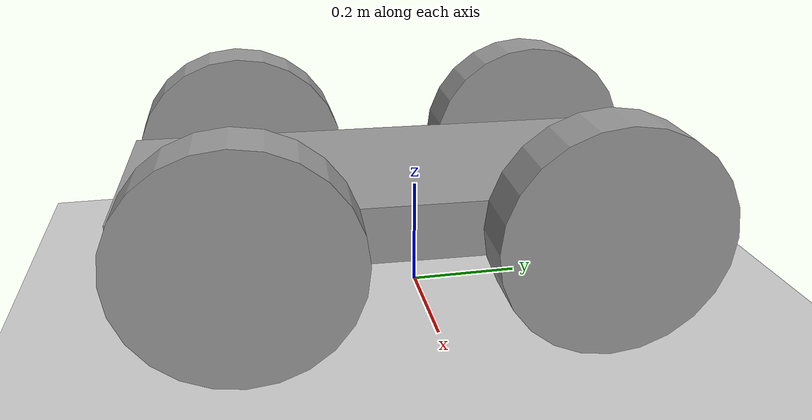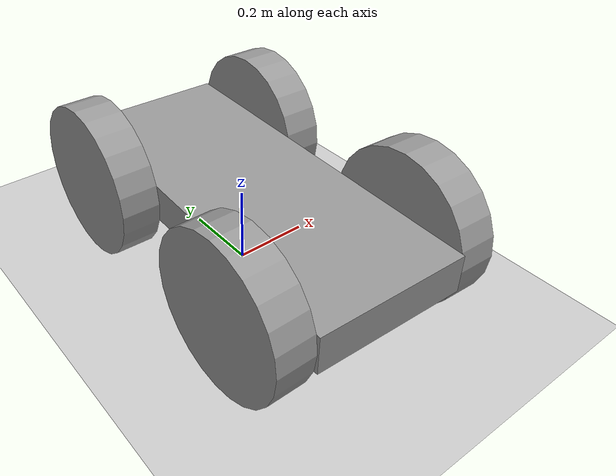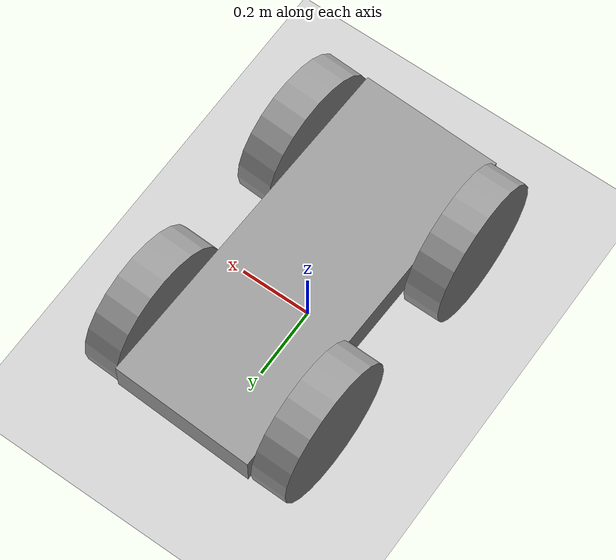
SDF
<sdf version="1.6">
 <world name="default">
  <model name="ground_plane">
   <static>1</static>
   <link name="link">
    <collision name="collision">
     <geometry><plane><normal>0 0 1</normal><size>100 100</size></plane></geometry>
     <surface><friction><ode><mu>100</mu><mu2>50</mu2></ode></friction></surface>
    </collision>
    <visual name="visual">
     <cast_shadows>0</cast_shadows>
     <geometry><plane><normal>0 0 1</normal><size>100 100</size></plane></geometry>
     <material>
      <script><uri>file://media/materials/scripts/gazebo.material</uri><name>Gazebo/Grey</name></script>
     </material>
    </visual>
   </link>
  </model>
  <model name="4Wheel_Robot">
   <link name="link_2">
    <pose>0.001842 -0.000209 0 0 -0 0</pose>
    <inertial>
     <mass>1</mass>
     <inertia>
      <ixx>0.166667</ixx>
      <ixy>0</ixy>
      <ixz>0</ixz>
      <iyy>0.166667</iyy>
      <iyz>0</iyz>
      <izz>0.166667</izz>
     </inertia>
    </inertial>
    <visual name="visual">
     <geometry><box><size>0.4 1 0.1</size></box></geometry>
     <material>
      <lighting>1</lighting>
      <script><uri>file://media/materials/scripts/gazebo.material</uri><name>Gazebo/Grey</name></script>
      <shader type="pixel"><normal_map>__default__</normal_map></shader>
      <ambient>0.3 0.3 0.3 1</ambient>
      <diffuse>0.7 0.7 0.7 1</diffuse>
      <specular>0.01 0.01 0.01 1</specular>
      <emissive>0 0 0 1</emissive>
     </material>
    </visual>
    <collision name="collision">
     <geometry><box><size>0.4 1 0.1</size></box></geometry>
     <surface>
      <friction>
       <ode><mu>1</mu><mu2>1</mu2><fdir1>0 0 0</fdir1><slip1>0</slip1><slip2>0</slip2></ode>
       <torsional>
        <coefficient>1</coefficient>
        <patch_radius>0</patch_radius>
        <surface_radius>0</surface_radius>
        <use_patch_radius>1</use_patch_radius>
        <ode><slip>0</slip></ode>
       </torsional>
      </friction>
      <bounce><restitution_coefficient>0</restitution_coefficient><threshold>1e+06</threshold></bounce>
      <contact>
       <collide_without_contact>0</collide_without_contact>
       <collide_without_contact_bitmask>1</collide_without_contact_bitmask>
       <collide_bitmask>1</collide_bitmask>
       <ode>
        <soft_cfm>0</soft_cfm>
        <soft_erp>0.2</soft_erp>
        <kp>1e+13</kp>
        <kd>1</kd>
        <max_vel>0.01</max_vel>
        <min_depth>0</min_depth>
       </ode>
       <bullet>
        <split_impulse>1</split_impulse>
        <split_impulse_penetration_threshold>-0.01</split_impulse_penetration_threshold>
        <soft_cfm>0</soft_cfm>
        <soft_erp>0.2</soft_erp>
        <kp>1e+13</kp>
        <kd>1</kd>
       </bullet>
      </contact>
     </surface>
    </collision>
   </link>
   <link name="link_3">
    <pose>-0.252675 0.298691 0 1.57079 -9.6e-05 -1.54815</pose>
    <inertial>
     <mass>1</mass>
     <inertia><ixx>0.145833</ixx><ixy>0</ixy><ixz>0</ixz><iyy>0.145833</iyy><iyz>0</iyz><izz>0.125</izz></inertia>
    </inertial>
    <visual name="visual">
     <geometry><cylinder><radius>0.2</radius><length>0.1</length></cylinder></geometry>
     <material>
      <lighting>1</lighting>
      <script><uri>file://media/materials/scripts/gazebo.material</uri><name>Gazebo/Grey</name></script>
      <shader type="pixel"><normal_map>__default__</normal_map></shader>
      <ambient>0.3 0.3 0.3 1</ambient>
      <diffuse>0.7 0.7 0.7 1</diffuse>
      <specular>0.01 0.01 0.01 1</specular>
      <emissive>0 0 0 1</emissive>
     </material>
    </visual>
    <collision name="collision">
     <geometry><cylinder><radius>0.2</radius><length>0.1</length></cylinder></geometry>
     <surface>
      <friction>
       <ode><mu>1</mu><mu2>1</mu2><fdir1>0 0 0</fdir1><slip1>0</slip1><slip2>0</slip2></ode>
       <torsional>
        <coefficient>1</coefficient>
        <patch_radius>0</patch_radius>
        <surface_radius>0</surface_radius>
        <use_patch_radius>1</use_patch_radius>
        <ode><slip>0</slip></ode>
       </torsional>
      </friction>
      <bounce><restitution_coefficient>0</restitution_coefficient><threshold>1e+06</threshold></bounce>
      <contact>
       <collide_without_contact>0</collide_without_contact>
       <collide_without_contact_bitmask>1</collide_without_contact_bitmask>
       <collide_bitmask>1</collide_bitmask>
       <ode>
        <soft_cfm>0</soft_cfm>
        <soft_erp>0.2</soft_erp>
        <kp>1e+13</kp>
        <kd>1</kd>
        <max_vel>0.01</max_vel>
        <min_depth>0</min_depth>
       </ode>
       <bullet>
        <split_impulse>1</split_impulse>
        <split_impulse_penetration_threshold>-0.01</split_impulse_penetration_threshold>
        <soft_cfm>0</soft_cfm>
        <soft_erp>0.2</soft_erp>
        <kp>1e+13</kp>
        <kd>1</kd>
       </bullet>
      </contact>
     </surface>
    </collision>
   </link>
   <link name="link_3_clone">
    <pose>-0.255703 -0.298438 0 1.5708 9.6e-05 1.60871</pose>
    <inertial>
     <mass>1</mass>
     <inertia><ixx>0.145833</ixx><ixy>0</ixy><ixz>0</ixz><iyy>0.145833</iyy><iyz>0</iyz><izz>0.125</izz></inertia>
    </inertial>
    <visual name="visual">
     <geometry><cylinder><radius>0.2</radius><length>0.1</length></cylinder></geometry>
     <material>
      <lighting>1</lighting>
      <script><uri>file://media/materials/scripts/gazebo.material</uri><name>Gazebo/Grey</name></script>
      <shader type="pixel"><normal_map>__default__</normal_map></shader>
      <ambient>0.3 0.3 0.3 1</ambient>
      <diffuse>0.7 0.7 0.7 1</diffuse>
      <specular>0.01 0.01 0.01 1</specular>
      <emissive>0 0 0 1</emissive>
     </material>
    </visual>
    <collision name="collision">
     <geometry><cylinder><radius>0.2</radius><length>0.1</length></cylinder></geometry>
     <surface>
      <friction>
       <ode><mu>1</mu><mu2>1</mu2><fdir1>0 0 0</fdir1><slip1>0</slip1><slip2>0</slip2></ode>
       <torsional>
        <coefficient>1</coefficient>
        <patch_radius>0</patch_radius>
        <surface_radius>0</surface_radius>
        <use_patch_radius>1</use_patch_radius>
        <ode><slip>0</slip></ode>
       </torsional>
      </friction>
      <bounce><restitution_coefficient>0</restitution_coefficient><threshold>1e+06</threshold></bounce>
      <contact>
       <collide_without_contact>0</collide_without_contact>
       <collide_without_contact_bitmask>1</collide_without_contact_bitmask>
       <collide_bitmask>1</collide_bitmask>
       <ode>
        <soft_cfm>0</soft_cfm>
        <soft_erp>0.2</soft_erp>
        <kp>1e+13</kp>
        <kd>1</kd>
        <max_vel>0.01</max_vel>
        <min_depth>0</min_depth>
       </ode>
       <bullet>
        <split_impulse>1</split_impulse>
        <split_impulse_penetration_threshold>-0.01</split_impulse_penetration_threshold>
        <soft_cfm>0</soft_cfm>
        <soft_erp>0.2</soft_erp>
        <kp>1e+13</kp>
        <kd>1</kd>
       </bullet>
      </contact>
     </surface>
    </collision>
   </link>
   <link name="link_3_clone_0">
    <pose>0.252501 0.299608 0 1.5708 9.6e-05 1.57409</pose>
    <inertial>
     <mass>1</mass>
     <inertia><ixx>0.145833</ixx><ixy>0</ixy><ixz>0</ixz><iyy>0.145833</iyy><iyz>0</iyz><izz>0.125</izz></inertia>
    </inertial>
    <visual name="visual">
     <geometry><cylinder><radius>0.2</radius><length>0.1</length></cylinder></geometry>
     <material>
      <lighting>1</lighting>
      <script><uri>file://media/materials/scripts/gazebo.material</uri><name>Gazebo/Grey</name></script>
      <shader type="pixel"><normal_map>__default__</normal_map></shader>
      <ambient>0.3 0.3 0.3 1</ambient>
      <diffuse>0.7 0.7 0.7 1</diffuse>
      <specular>0.01 0.01 0.01 1</specular>
      <emissive>0 0 0 1</emissive>
     </material>
    </visual>
    <collision name="collision">
     <geometry><cylinder><radius>0.2</radius><length>0.1</length></cylinder></geometry>
     <surface>
      <friction>
       <ode><mu>1</mu><mu2>1</mu2><fdir1>0 0 0</fdir1><slip1>0</slip1><slip2>0</slip2></ode>
       <torsional>
        <coefficient>1</coefficient>
        <patch_radius>0</patch_radius>
        <surface_radius>0</surface_radius>
        <use_patch_radius>1</use_patch_radius>
        <ode><slip>0</slip></ode>
       </torsional>
      </friction>
      <bounce><restitution_coefficient>0</restitution_coefficient><threshold>1e+06</threshold></bounce>
      <contact>
       <collide_without_contact>0</collide_without_contact>
       <collide_without_contact_bitmask>1</collide_without_contact_bitmask>
       <collide_bitmask>1</collide_bitmask>
       <ode>
        <soft_cfm>0</soft_cfm>
        <soft_erp>0.2</soft_erp>
        <kp>1e+13</kp>
        <kd>1</kd>
        <max_vel>0.01</max_vel>
        <min_depth>0</min_depth>
       </ode>
       <bullet>
        <split_impulse>1</split_impulse>
        <split_impulse_penetration_threshold>-0.01</split_impulse_penetration_threshold>
        <soft_cfm>0</soft_cfm>
        <soft_erp>0.2</soft_erp>
        <kp>1e+13</kp>
        <kd>1</kd>
       </bullet>
      </contact>
     </surface>
    </collision>
   </link>
   <link name="link_3_clone_1">
    <pose>0.254035 -0.299653 0 1.57079 9.6e-05 1.55982</pose>
    <inertial>
     <mass>1</mass>
     <inertia><ixx>0.145833</ixx><ixy>0</ixy><ixz>0</ixz><iyy>0.145833</iyy><iyz>0</iyz><izz>0.125</izz></inertia>
    </inertial>
    <visual name="visual">
     <geometry><cylinder><radius>0.2</radius><length>0.1</length></cylinder></geometry>
     <material>
      <lighting>1</lighting>
      <script><uri>file://media/materials/scripts/gazebo.material</uri><name>Gazebo/Grey</name></script>
      <shader type="pixel"><normal_map>__default__</normal_map></shader>
      <ambient>0.3 0.3 0.3 1</ambient>
      <diffuse>0.7 0.7 0.7 1</diffuse>
      <specular>0.01 0.01 0.01 1</specular>
      <emissive>0 0 0 1</emissive>
     </material>
    </visual>
    <collision name="collision">
     <geometry><cylinder><radius>0.2</radius><length>0.1</length></cylinder></geometry>
     <surface>
      <friction>
       <ode><mu>1</mu><mu2>1</mu2><fdir1>0 0 0</fdir1><slip1>0</slip1><slip2>0</slip2></ode>
       <torsional>
        <coefficient>1</coefficient>
        <patch_radius>0</patch_radius>
        <surface_radius>0</surface_radius>
        <use_patch_radius>1</use_patch_radius>
        <ode><slip>0</slip></ode>
       </torsional>
      </friction>
      <bounce><restitution_coefficient>0</restitution_coefficient><threshold>1e+06</threshold></bounce>
      <contact>
       <collide_without_contact>0</collide_without_contact>
       <collide_without_contact_bitmask>1</collide_without_contact_bitmask>
       <collide_bitmask>1</collide_bitmask>
       <ode>
        <soft_cfm>0</soft_cfm>
        <soft_erp>0.2</soft_erp>
        <kp>1e+13</kp>
        <kd>1</kd>
        <max_vel>0.01</max_vel>
        <min_depth>0</min_depth>
       </ode>
       <bullet>
        <split_impulse>1</split_impulse>
        <split_impulse_penetration_threshold>-0.01</split_impulse_penetration_threshold>
        <soft_cfm>0</soft_cfm>
        <soft_erp>0.2</soft_erp>
        <kp>1e+13</kp>
        <kd>1</kd>
       </bullet>
      </contact>
     </surface>
    </collision>
   </link>
   <joint name="link_2_JOINT_10" type="revolute">
    <parent>link_2</parent>
    <child>link_3_clone_1</child>
    <axis>
     <xyz>0 0 1</xyz>
     <use_parent_model_frame>0</use_parent_model_frame>
     <limit>
      <lower>-1.79769e+308</lower>
      <upper>1.79769e+308</upper>
      <effort>-1</effort>
      <velocity>-1</velocity>
     </limit>
     <dynamics>
      <spring_reference>0</spring_reference>
      <spring_stiffness>0</spring_stiffness>
      <damping>0</damping>
     </dynamics>
    </axis>
    <physics>
     <ode><limit><cfm>0</cfm><erp>0.2</erp></limit><suspension><cfm>0</cfm><erp>0.2</erp></suspension></ode>
    </physics>
   </joint>
   <joint name="link_2_JOINT_5" type="revolute">
    <parent>link_2</parent>
    <child>link_3</child>
    <axis>
     <xyz>0 0 1</xyz>
     <use_parent_model_frame>0</use_parent_model_frame>
     <limit>
      <lower>-1.79769e+308</lower>
      <upper>1.79769e+308</upper>
      <effort>-1</effort>
      <velocity>-1</velocity>
     </limit>
     <dynamics>
      <spring_reference>0</spring_reference>
      <spring_stiffness>0</spring_stiffness>
      <damping>0</damping>
     </dynamics>
    </axis>
    <physics>
     <ode><limit><cfm>0</cfm><erp>0.2</erp></limit><suspension><cfm>0</cfm><erp>0.2</erp></suspension></ode>
    </physics>
   </joint>
   <joint name="link_2_JOINT_7" type="revolute">
    <parent>link_2</parent>
    <child>link_3_clone</child>
    <axis>
     <xyz>0 0 1</xyz>
     <use_parent_model_frame>0</use_parent_model_frame>
     <limit>
      <lower>-1.79769e+308</lower>
      <upper>1.79769e+308</upper>
      <effort>-1</effort>
      <velocity>-1</velocity>
     </limit>
     <dynamics>
      <spring_reference>0</spring_reference>
      <spring_stiffness>0</spring_stiffness>
      <damping>0</damping>
     </dynamics>
    </axis>
    <physics>
     <ode><limit><cfm>0</cfm><erp>0.2</erp></limit><suspension><cfm>0</cfm><erp>0.2</erp></suspension></ode>
    </physics>
   </joint>
   <joint name="link_2_JOINT_8" type="revolute">
    <parent>link_2</parent>
    <child>link_3_clone_0</child>
    <axis>
     <xyz>1 0 0</xyz>
     <use_parent_model_frame>0</use_parent_model_frame>
     <limit>
      <lower>-1.79769e+308</lower>
      <upper>1.79769e+308</upper>
      <effort>-1</effort>
      <velocity>-1</velocity>
     </limit>
     <dynamics>
      <spring_reference>0</spring_reference>
      <spring_stiffness>0</spring_stiffness>
      <damping>0</damping>
     </dynamics>
    </axis>
    <physics>
     <ode><limit><cfm>0</cfm><erp>0.2</erp></limit><suspension><cfm>0</cfm><erp>0.2</erp></suspension></ode>
    </physics>
   </joint>
   <static>0</static>
   <pose>0.007542 -0.021402 0.199991 -1e-06 1e-06 -0.03561</pose>
  </model>
 </world>
</sdf>
